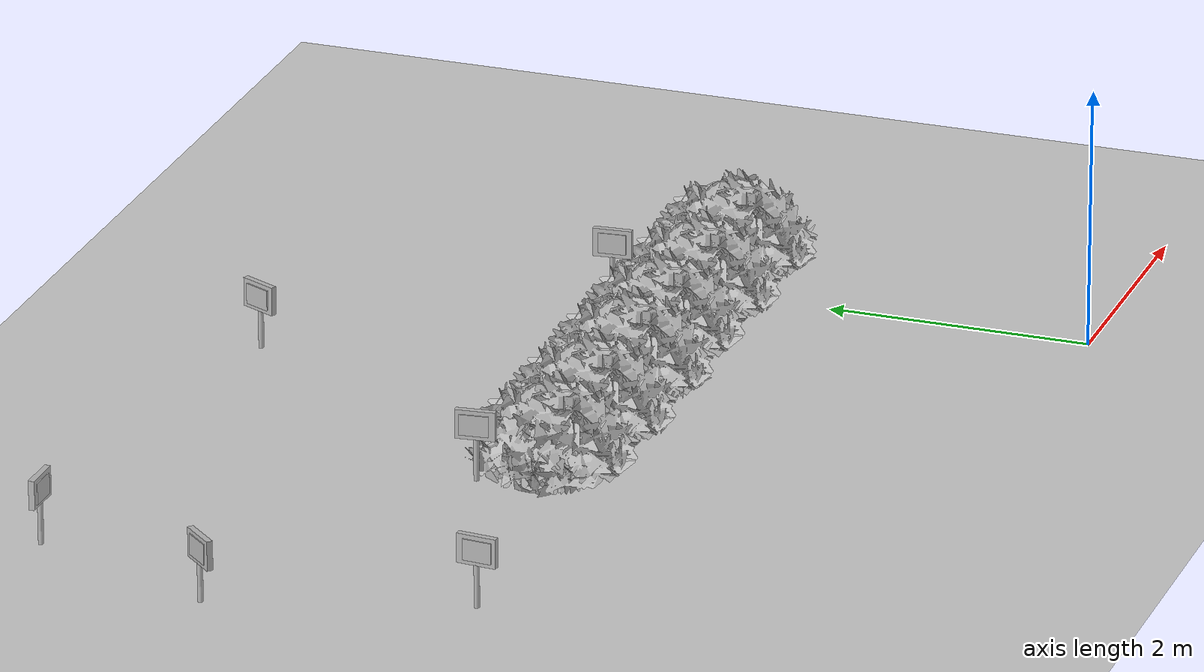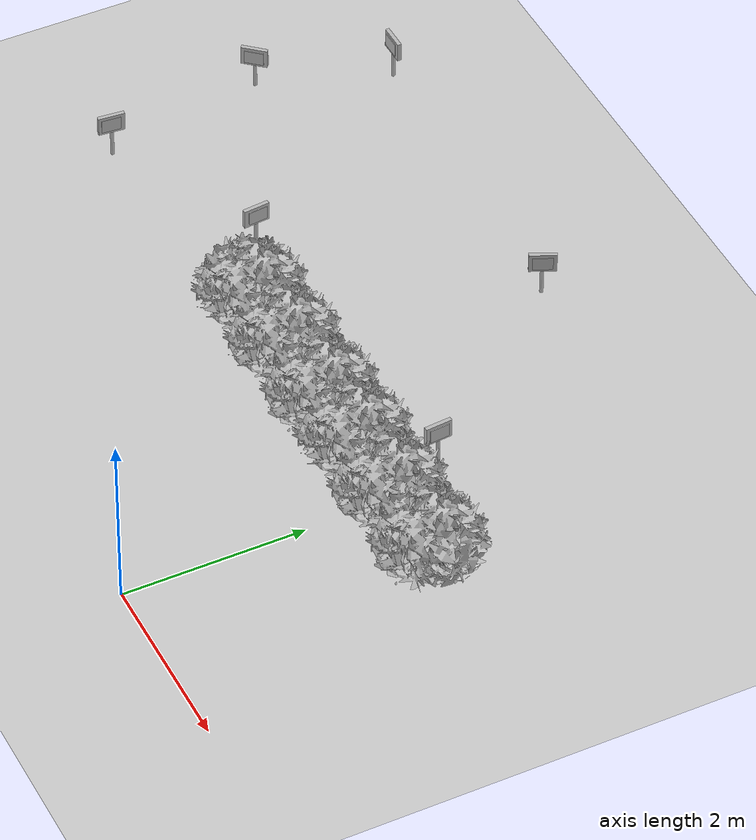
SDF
<sdf version="1.7">
 <world name="default">
  <model name="ground_plane">
   <static>1</static>
   <link name="link">
    <collision name="collision">
     <geometry><plane><normal>0 0 1</normal><size>100 100</size></plane></geometry>
     <surface><friction><ode><mu>100</mu><mu2>50</mu2></ode></friction></surface>
    </collision>
    <visual name="visual">
     <cast_shadows>0</cast_shadows>
     <geometry><plane><normal>0 0 1</normal><size>100 100</size></plane></geometry>
     <material>
      <script><uri>file://media/materials/scripts/gazebo.material</uri><name>Gazebo/Grey</name></script>
     </material>
    </visual>
   </link>
  </model>
  <model name="abbfre_9">
   <link name="link_0">
    <inertial>
     <mass>1</mass>
     <inertia>
      <ixx>0.166667</ixx>
      <ixy>0</ixy>
      <ixz>0</ixz>
      <iyy>0.166667</iyy>
      <iyz>0</iyz>
      <izz>0.166667</izz>
     </inertia>
    </inertial>
    <pose>0 0 -0 1.60917 -0 0</pose>
    <visual name="visual">
     <geometry><mesh><uri>model://abbfre/meshes/arbufres.obj</uri><scale>1 1 1</scale></mesh></geometry>
    </visual>
    <collision name="collision">
     <geometry><mesh><uri>model://abbfre/meshes/arbufres.obj</uri><scale>1 1 1</scale></mesh></geometry>
     <surface>
      <friction>
       <ode><mu>1</mu><mu2>1</mu2><fdir1>0 0 0</fdir1><slip1>0</slip1><slip2>0</slip2></ode>
       <torsional>
        <coefficient>1</coefficient>
        <patch_radius>0</patch_radius>
        <surface_radius>0</surface_radius>
        <use_patch_radius>1</use_patch_radius>
        <ode><slip>0</slip></ode>
       </torsional>
      </friction>
      <bounce><restitution_coefficient>0</restitution_coefficient><threshold>1e+06</threshold></bounce>
      <contact>
       <collide_without_contact>0</collide_without_contact>
       <collide_without_contact_bitmask>1</collide_without_contact_bitmask>
       <collide_bitmask>1</collide_bitmask>
       <ode>
        <soft_cfm>0</soft_cfm>
        <soft_erp>0.2</soft_erp>
        <kp>1e+13</kp>
        <kd>1</kd>
        <max_vel>0.01</max_vel>
        <min_depth>0</min_depth>
       </ode>
       <bullet>
        <split_impulse>1</split_impulse>
        <split_impulse_penetration_threshold>-0.01</split_impulse_penetration_threshold>
        <soft_cfm>0</soft_cfm>
        <soft_erp>0.2</soft_erp>
        <kp>1e+13</kp>
        <kd>1</kd>
       </bullet>
      </contact>
     </surface>
    </collision>
   </link>
   <static>1</static>
   <pose>-0.104269 3.10996 0 0 -0 0</pose>
  </model>
  <model name="abbfre_10">
   <link name="link_0">
    <inertial>
     <mass>1</mass>
     <inertia>
      <ixx>0.166667</ixx>
      <ixy>0</ixy>
      <ixz>0</ixz>
      <iyy>0.166667</iyy>
      <iyz>0</iyz>
      <izz>0.166667</izz>
     </inertia>
    </inertial>
    <pose>0 0 -0 1.60917 -0 0</pose>
    <visual name="visual">
     <geometry><mesh><uri>model://abbfre/meshes/arbufres.obj</uri><scale>1 1 1</scale></mesh></geometry>
    </visual>
    <collision name="collision">
     <geometry><mesh><uri>model://abbfre/meshes/arbufres.obj</uri><scale>1 1 1</scale></mesh></geometry>
     <surface>
      <friction>
       <ode><mu>1</mu><mu2>1</mu2><fdir1>0 0 0</fdir1><slip1>0</slip1><slip2>0</slip2></ode>
       <torsional>
        <coefficient>1</coefficient>
        <patch_radius>0</patch_radius>
        <surface_radius>0</surface_radius>
        <use_patch_radius>1</use_patch_radius>
        <ode><slip>0</slip></ode>
       </torsional>
      </friction>
      <bounce><restitution_coefficient>0</restitution_coefficient><threshold>1e+06</threshold></bounce>
      <contact>
       <collide_without_contact>0</collide_without_contact>
       <collide_without_contact_bitmask>1</collide_without_contact_bitmask>
       <collide_bitmask>1</collide_bitmask>
       <ode>
        <soft_cfm>0</soft_cfm>
        <soft_erp>0.2</soft_erp>
        <kp>1e+13</kp>
        <kd>1</kd>
        <max_vel>0.01</max_vel>
        <min_depth>0</min_depth>
       </ode>
       <bullet>
        <split_impulse>1</split_impulse>
        <split_impulse_penetration_threshold>-0.01</split_impulse_penetration_threshold>
        <soft_cfm>0</soft_cfm>
        <soft_erp>0.2</soft_erp>
        <kp>1e+13</kp>
        <kd>1</kd>
       </bullet>
      </contact>
     </surface>
    </collision>
   </link>
   <static>1</static>
   <pose>-2.49032 3.10051 0 0 -0 0</pose>
  </model>
  <model name="letrero_riego_5">
   <link name="link_0">
    <inertial>
     <mass>0.0543151</mass>
     <inertia>
      <ixx>4.90351e-06</ixx>
      <ixy>0</ixy>
      <ixz>0</ixz>
      <iyy>4.90351e-06</iyy>
      <iyz>0</iyz>
      <izz>1.12837e-07</izz>
     </inertia>
    </inertial>
    <pose>0.002515 0.005109 0.153562 0 -0 0</pose>
    <visual name="visual">
     <geometry><cylinder><radius>0.0203836</radius><length>0.327243</length></cylinder></geometry>
     <material>
      <lighting>1</lighting>
      <script>
       <uri>model://letrero_riego/madera/scripts</uri>
       <uri>model://letrero_riego/madera/textures</uri>
       <name>textur/madera</name>
      </script>
      <shader type="pixel"/>
      <emissive>0 0 0 1</emissive>
     </material>
    </visual>
    <collision name="collision">
     <geometry><cylinder><radius>0.020384</radius><length>0.327243</length></cylinder></geometry>
     <surface>
      <friction>
       <ode><mu>1</mu><mu2>1</mu2><fdir1>0 0 0</fdir1><slip1>0</slip1><slip2>0</slip2></ode>
       <torsional>
        <coefficient>1</coefficient>
        <patch_radius>0</patch_radius>
        <surface_radius>0</surface_radius>
        <use_patch_radius>1</use_patch_radius>
        <ode><slip>0</slip></ode>
       </torsional>
      </friction>
      <bounce><restitution_coefficient>0</restitution_coefficient><threshold>1e+06</threshold></bounce>
      <contact>
       <collide_without_contact>0</collide_without_contact>
       <collide_without_contact_bitmask>1</collide_without_contact_bitmask>
       <collide_bitmask>1</collide_bitmask>
       <ode>
        <soft_cfm>0</soft_cfm>
        <soft_erp>0.2</soft_erp>
        <kp>1e+13</kp>
        <kd>1</kd>
        <max_vel>0.01</max_vel>
        <min_depth>0</min_depth>
       </ode>
       <bullet>
        <split_impulse>1</split_impulse>
        <split_impulse_penetration_threshold>-0.01</split_impulse_penetration_threshold>
        <soft_cfm>0</soft_cfm>
        <soft_erp>0.2</soft_erp>
        <kp>1e+13</kp>
        <kd>1</kd>
       </bullet>
      </contact>
     </surface>
    </collision>
   </link>
   <link name="link_1">
    <inertial>
     <mass>0.00299633</mass>
     <inertia>
      <ixx>1.27855e-05</ixx>
      <ixy>0</ixy>
      <ixz>0</ixz>
      <iyy>3.42923e-05</iyy>
      <iyz>0</iyz>
      <izz>2.25402e-05</izz>
     </inertia>
    </inertial>
    <pose>-0.001542 0.002452 0.422031 0 -0 0</pose>
    <visual name="visual">
     <geometry><box><size>0.296988 0.04549 0.221665</size></box></geometry>
     <material>
      <lighting>1</lighting>
      <script>
       <uri>model://letrero_riego/madera/scripts</uri>
       <uri>model://letrero_riego/madera/textures</uri>
       <name>textur/madera</name>
      </script>
      <shader type="pixel"/>
      <emissive>0 0 0 1</emissive>
     </material>
    </visual>
    <collision name="collision">
     <geometry><box><size>0.296988 0.04549 0.221665</size></box></geometry>
     <surface>
      <friction>
       <ode><mu>1</mu><mu2>1</mu2><fdir1>0 0 0</fdir1><slip1>0</slip1><slip2>0</slip2></ode>
       <torsional>
        <coefficient>1</coefficient>
        <patch_radius>0</patch_radius>
        <surface_radius>0</surface_radius>
        <use_patch_radius>1</use_patch_radius>
        <ode><slip>0</slip></ode>
       </torsional>
      </friction>
      <bounce><restitution_coefficient>0</restitution_coefficient><threshold>1e+06</threshold></bounce>
      <contact>
       <collide_without_contact>0</collide_without_contact>
       <collide_without_contact_bitmask>1</collide_without_contact_bitmask>
       <collide_bitmask>1</collide_bitmask>
       <ode>
        <soft_cfm>0</soft_cfm>
        <soft_erp>0.2</soft_erp>
        <kp>1e+13</kp>
        <kd>1</kd>
        <max_vel>0.01</max_vel>
        <min_depth>0</min_depth>
       </ode>
       <bullet>
        <split_impulse>1</split_impulse>
        <split_impulse_penetration_threshold>-0.01</split_impulse_penetration_threshold>
        <soft_cfm>0</soft_cfm>
        <soft_erp>0.2</soft_erp>
        <kp>1e+13</kp>
        <kd>1</kd>
       </bullet>
      </contact>
     </surface>
    </collision>
   </link>
   <link name="link_2">
    <inertial>
     <mass>0.00173577</mass>
     <inertia>
      <ixx>4.23206e-06</ixx>
      <ixy>0</ixy>
      <ixz>0</ixz>
      <iyy>1.03921e-05</iyy>
      <iyz>0</iyz>
      <izz>7.37287e-06</izz>
     </inertia>
    </inertial>
    <pose>-0.010225 0.002657 0.421501 0 -0 0</pose>
    <visual name="visual">
     <geometry><box><size>0.216284 0.064749 0.15832</size></box></geometry>
     <material>
      <lighting>1</lighting>
      <script>
       <uri>model://letrero_riego/materials/scripts</uri>
       <uri>model://letrero_riego/materials/textures</uri>
       <name>textur/riego</name>
      </script>
      <shader type="pixel"/>
      <emissive>0 0 0 1</emissive>
     </material>
    </visual>
    <collision name="collision">
     <geometry><box><size>0.216284 0.064749 0.15832</size></box></geometry>
     <surface>
      <friction>
       <ode><mu>1</mu><mu2>1</mu2><fdir1>0 0 0</fdir1><slip1>0</slip1><slip2>0</slip2></ode>
       <torsional>
        <coefficient>1</coefficient>
        <patch_radius>0</patch_radius>
        <surface_radius>0</surface_radius>
        <use_patch_radius>1</use_patch_radius>
        <ode><slip>0</slip></ode>
       </torsional>
      </friction>
      <bounce><restitution_coefficient>0</restitution_coefficient><threshold>1e+06</threshold></bounce>
      <contact>
       <collide_without_contact>0</collide_without_contact>
       <collide_without_contact_bitmask>1</collide_without_contact_bitmask>
       <collide_bitmask>1</collide_bitmask>
       <ode>
        <soft_cfm>0</soft_cfm>
        <soft_erp>0.2</soft_erp>
        <kp>1e+13</kp>
        <kd>1</kd>
        <max_vel>0.01</max_vel>
        <min_depth>0</min_depth>
       </ode>
       <bullet>
        <split_impulse>1</split_impulse>
        <split_impulse_penetration_threshold>-0.01</split_impulse_penetration_threshold>
        <soft_cfm>0</soft_cfm>
        <soft_erp>0.2</soft_erp>
        <kp>1e+13</kp>
        <kd>1</kd>
       </bullet>
      </contact>
     </surface>
    </collision>
   </link>
   <joint name="link_0_JOINT_1" type="fixed">
    <parent>link_0</parent>
    <child>link_1</child>
    <physics>
     <ode><limit><cfm>0</cfm><erp>0.2</erp></limit><suspension><cfm>0</cfm><erp>0.2</erp></suspension></ode>
    </physics>
   </joint>
   <joint name="link_0_JOINT_2" type="fixed">
    <parent>link_0</parent>
    <child>link_2</child>
    <physics>
     <ode><limit><cfm>0</cfm><erp>0.2</erp></limit><suspension><cfm>0</cfm><erp>0.2</erp></suspension></ode>
    </physics>
   </joint>
   <static>1</static>
   <pose>-5.80521 5.87905 0 0 -0 0</pose>
  </model>
  <model name="letrero_riego_11">
   <link name="link_0">
    <inertial>
     <mass>0.0543151</mass>
     <inertia>
      <ixx>4.90351e-06</ixx>
      <ixy>0</ixy>
      <ixz>0</ixz>
      <iyy>4.90351e-06</iyy>
      <iyz>0</iyz>
      <izz>1.12837e-07</izz>
     </inertia>
    </inertial>
    <pose>0.002515 0.005109 0.153562 0 -0 0</pose>
    <visual name="visual">
     <geometry><cylinder><radius>0.0203836</radius><length>0.327243</length></cylinder></geometry>
     <material>
      <lighting>1</lighting>
      <script>
       <uri>model://letrero_riego/madera/scripts</uri>
       <uri>model://letrero_riego/madera/textures</uri>
       <name>textur/madera</name>
      </script>
      <shader type="pixel"/>
      <emissive>0 0 0 1</emissive>
     </material>
    </visual>
    <collision name="collision">
     <geometry><cylinder><radius>0.020384</radius><length>0.327243</length></cylinder></geometry>
     <surface>
      <friction>
       <ode><mu>1</mu><mu2>1</mu2><fdir1>0 0 0</fdir1><slip1>0</slip1><slip2>0</slip2></ode>
       <torsional>
        <coefficient>1</coefficient>
        <patch_radius>0</patch_radius>
        <surface_radius>0</surface_radius>
        <use_patch_radius>1</use_patch_radius>
        <ode><slip>0</slip></ode>
       </torsional>
      </friction>
      <bounce><restitution_coefficient>0</restitution_coefficient><threshold>1e+06</threshold></bounce>
      <contact>
       <collide_without_contact>0</collide_without_contact>
       <collide_without_contact_bitmask>1</collide_without_contact_bitmask>
       <collide_bitmask>1</collide_bitmask>
       <ode>
        <soft_cfm>0</soft_cfm>
        <soft_erp>0.2</soft_erp>
        <kp>1e+13</kp>
        <kd>1</kd>
        <max_vel>0.01</max_vel>
        <min_depth>0</min_depth>
       </ode>
       <bullet>
        <split_impulse>1</split_impulse>
        <split_impulse_penetration_threshold>-0.01</split_impulse_penetration_threshold>
        <soft_cfm>0</soft_cfm>
        <soft_erp>0.2</soft_erp>
        <kp>1e+13</kp>
        <kd>1</kd>
       </bullet>
      </contact>
     </surface>
    </collision>
   </link>
   <link name="link_1">
    <inertial>
     <mass>0.00299633</mass>
     <inertia>
      <ixx>1.27855e-05</ixx>
      <ixy>0</ixy>
      <ixz>0</ixz>
      <iyy>3.42923e-05</iyy>
      <iyz>0</iyz>
      <izz>2.25402e-05</izz>
     </inertia>
    </inertial>
    <pose>-0.001542 0.002452 0.422031 0 -0 0</pose>
    <visual name="visual">
     <geometry><box><size>0.296988 0.04549 0.221665</size></box></geometry>
     <material>
      <lighting>1</lighting>
      <script>
       <uri>model://letrero_riego/madera/scripts</uri>
       <uri>model://letrero_riego/madera/textures</uri>
       <name>textur/madera</name>
      </script>
      <shader type="pixel"/>
      <emissive>0 0 0 1</emissive>
     </material>
    </visual>
    <collision name="collision">
     <geometry><box><size>0.296988 0.04549 0.221665</size></box></geometry>
     <surface>
      <friction>
       <ode><mu>1</mu><mu2>1</mu2><fdir1>0 0 0</fdir1><slip1>0</slip1><slip2>0</slip2></ode>
       <torsional>
        <coefficient>1</coefficient>
        <patch_radius>0</patch_radius>
        <surface_radius>0</surface_radius>
        <use_patch_radius>1</use_patch_radius>
        <ode><slip>0</slip></ode>
       </torsional>
      </friction>
      <bounce><restitution_coefficient>0</restitution_coefficient><threshold>1e+06</threshold></bounce>
      <contact>
       <collide_without_contact>0</collide_without_contact>
       <collide_without_contact_bitmask>1</collide_without_contact_bitmask>
       <collide_bitmask>1</collide_bitmask>
       <ode>
        <soft_cfm>0</soft_cfm>
        <soft_erp>0.2</soft_erp>
        <kp>1e+13</kp>
        <kd>1</kd>
        <max_vel>0.01</max_vel>
        <min_depth>0</min_depth>
       </ode>
       <bullet>
        <split_impulse>1</split_impulse>
        <split_impulse_penetration_threshold>-0.01</split_impulse_penetration_threshold>
        <soft_cfm>0</soft_cfm>
        <soft_erp>0.2</soft_erp>
        <kp>1e+13</kp>
        <kd>1</kd>
       </bullet>
      </contact>
     </surface>
    </collision>
   </link>
   <link name="link_2">
    <inertial>
     <mass>0.00173577</mass>
     <inertia>
      <ixx>4.23206e-06</ixx>
      <ixy>0</ixy>
      <ixz>0</ixz>
      <iyy>1.03921e-05</iyy>
      <iyz>0</iyz>
      <izz>7.37287e-06</izz>
     </inertia>
    </inertial>
    <pose>-0.010225 0.002657 0.421501 0 -0 0</pose>
    <visual name="visual">
     <geometry><box><size>0.216284 0.064749 0.15832</size></box></geometry>
     <material>
      <lighting>1</lighting>
      <script>
       <uri>model://letrero_riego/materials/scripts</uri>
       <uri>model://letrero_riego/materials/textures</uri>
       <name>textur/riego</name>
      </script>
      <shader type="pixel"/>
      <emissive>0 0 0 1</emissive>
     </material>
    </visual>
    <collision name="collision">
     <geometry><box><size>0.216284 0.064749 0.15832</size></box></geometry>
     <surface>
      <friction>
       <ode><mu>1</mu><mu2>1</mu2><fdir1>0 0 0</fdir1><slip1>0</slip1><slip2>0</slip2></ode>
       <torsional>
        <coefficient>1</coefficient>
        <patch_radius>0</patch_radius>
        <surface_radius>0</surface_radius>
        <use_patch_radius>1</use_patch_radius>
        <ode><slip>0</slip></ode>
       </torsional>
      </friction>
      <bounce><restitution_coefficient>0</restitution_coefficient><threshold>1e+06</threshold></bounce>
      <contact>
       <collide_without_contact>0</collide_without_contact>
       <collide_without_contact_bitmask>1</collide_without_contact_bitmask>
       <collide_bitmask>1</collide_bitmask>
       <ode>
        <soft_cfm>0</soft_cfm>
        <soft_erp>0.2</soft_erp>
        <kp>1e+13</kp>
        <kd>1</kd>
        <max_vel>0.01</max_vel>
        <min_depth>0</min_depth>
       </ode>
       <bullet>
        <split_impulse>1</split_impulse>
        <split_impulse_penetration_threshold>-0.01</split_impulse_penetration_threshold>
        <soft_cfm>0</soft_cfm>
        <soft_erp>0.2</soft_erp>
        <kp>1e+13</kp>
        <kd>1</kd>
       </bullet>
      </contact>
     </surface>
    </collision>
   </link>
   <joint name="link_0_JOINT_1" type="fixed">
    <parent>link_0</parent>
    <child>link_1</child>
    <physics>
     <ode><limit><cfm>0</cfm><erp>0.2</erp></limit><suspension><cfm>0</cfm><erp>0.2</erp></suspension></ode>
    </physics>
   </joint>
   <joint name="link_0_JOINT_2" type="fixed">
    <parent>link_0</parent>
    <child>link_2</child>
    <physics>
     <ode><limit><cfm>0</cfm><erp>0.2</erp></limit><suspension><cfm>0</cfm><erp>0.2</erp></suspension></ode>
    </physics>
   </joint>
   <static>1</static>
   <pose>-5.90008 2.58785 0.067402 0 -0 1.48305</pose>
  </model>
  <model name="letrero_fresa_9">
   <link name="link_0">
    <inertial>
     <mass>0.00543151</mass>
     <inertia>
      <ixx>4.90351e-06</ixx>
      <ixy>0</ixy>
      <ixz>0</ixz>
      <iyy>4.90351e-06</iyy>
      <iyz>0</iyz>
      <izz>1.12837e-07</izz>
     </inertia>
    </inertial>
    <pose>0.002372 -0.000902 -0.178803 0 -0 0</pose>
    <visual name="visual">
     <geometry><cylinder><radius>0.0203836</radius><length>0.327243</length></cylinder></geometry>
     <material>
      <lighting>1</lighting>
      <script>
       <uri>model://letrero_fresa/madera/scripts</uri>
       <uri>model://letrero_fresa/madera/textures</uri>
       <name>textur/madera</name>
      </script>
      <shader type="pixel"/>
      <emissive>0 0 0 1</emissive>
     </material>
    </visual>
    <collision name="collision">
     <geometry><cylinder><radius>0.020384</radius><length>0.327243</length></cylinder></geometry>
     <surface>
      <friction>
       <ode><mu>1</mu><mu2>1</mu2><fdir1>0 0 0</fdir1><slip1>0</slip1><slip2>0</slip2></ode>
       <torsional>
        <coefficient>1</coefficient>
        <patch_radius>0</patch_radius>
        <surface_radius>0</surface_radius>
        <use_patch_radius>1</use_patch_radius>
        <ode><slip>0</slip></ode>
       </torsional>
      </friction>
      <bounce><restitution_coefficient>0</restitution_coefficient><threshold>1e+06</threshold></bounce>
      <contact>
       <collide_without_contact>0</collide_without_contact>
       <collide_without_contact_bitmask>1</collide_without_contact_bitmask>
       <collide_bitmask>1</collide_bitmask>
       <ode>
        <soft_cfm>0</soft_cfm>
        <soft_erp>0.2</soft_erp>
        <kp>1e+13</kp>
        <kd>1</kd>
        <max_vel>0.01</max_vel>
        <min_depth>0</min_depth>
       </ode>
       <bullet>
        <split_impulse>1</split_impulse>
        <split_impulse_penetration_threshold>-0.01</split_impulse_penetration_threshold>
        <soft_cfm>0</soft_cfm>
        <soft_erp>0.2</soft_erp>
        <kp>1e+13</kp>
        <kd>1</kd>
       </bullet>
      </contact>
     </surface>
    </collision>
   </link>
   <link name="link_1">
    <inertial>
     <mass>0.00299633</mass>
     <inertia>
      <ixx>1.27855e-05</ixx>
      <ixy>0</ixy>
      <ixz>0</ixz>
      <iyy>3.42923e-05</iyy>
      <iyz>0</iyz>
      <izz>2.25402e-05</izz>
     </inertia>
    </inertial>
    <pose>-0.001685 -0.003559 0.089666 0 -0 0</pose>
    <visual name="visual">
     <geometry><box><size>0.296988 0.04549 0.221665</size></box></geometry>
     <material>
      <lighting>1</lighting>
      <script>
       <uri>model://letrero_fresa/madera/scripts</uri>
       <uri>model://letrero_fresa/madera/textures</uri>
       <name>textur/madera</name>
      </script>
      <shader type="pixel"/>
      <emissive>0 0 0 1</emissive>
     </material>
    </visual>
    <collision name="collision">
     <geometry><box><size>0.296988 0.04549 0.221665</size></box></geometry>
     <surface>
      <friction>
       <ode><mu>1</mu><mu2>1</mu2><fdir1>0 0 0</fdir1><slip1>0</slip1><slip2>0</slip2></ode>
       <torsional>
        <coefficient>1</coefficient>
        <patch_radius>0</patch_radius>
        <surface_radius>0</surface_radius>
        <use_patch_radius>1</use_patch_radius>
        <ode><slip>0</slip></ode>
       </torsional>
      </friction>
      <bounce><restitution_coefficient>0</restitution_coefficient><threshold>1e+06</threshold></bounce>
      <contact>
       <collide_without_contact>0</collide_without_contact>
       <collide_without_contact_bitmask>1</collide_without_contact_bitmask>
       <collide_bitmask>1</collide_bitmask>
       <ode>
        <soft_cfm>0</soft_cfm>
        <soft_erp>0.2</soft_erp>
        <kp>1e+13</kp>
        <kd>1</kd>
        <max_vel>0.01</max_vel>
        <min_depth>0</min_depth>
       </ode>
       <bullet>
        <split_impulse>1</split_impulse>
        <split_impulse_penetration_threshold>-0.01</split_impulse_penetration_threshold>
        <soft_cfm>0</soft_cfm>
        <soft_erp>0.2</soft_erp>
        <kp>1e+13</kp>
        <kd>1</kd>
       </bullet>
      </contact>
     </surface>
    </collision>
   </link>
   <link name="link_2">
    <inertial>
     <mass>0.00219695</mass>
     <inertia>
      <ixx>5.34209e-06</ixx>
      <ixy>0</ixy>
      <ixz>0</ixz>
      <iyy>1.31531e-05</iyy>
      <iyz>0</iyz>
      <izz>9.31738e-06</izz>
     </inertia>
    </inertial>
    <pose>-0.001275 -0.005928 0.089136 0 -0 0</pose>
    <visual name="visual">
     <geometry><box><size>0.216284 0.06414 0.15832</size></box></geometry>
     <material>
      <lighting>1</lighting>
      <script>
       <uri>model://letrero_fresa/materials/scripts</uri>
       <uri>model://letrero_fresa/materials/textures</uri>
       <name>textur/difre</name>
      </script>
      <shader type="pixel"/>
      <emissive>0 0 0 1</emissive>
     </material>
    </visual>
    <collision name="collision">
     <geometry><box><size>0.216284 0.06414 0.15832</size></box></geometry>
     <surface>
      <friction>
       <ode><mu>1</mu><mu2>1</mu2><fdir1>0 0 0</fdir1><slip1>0</slip1><slip2>0</slip2></ode>
       <torsional>
        <coefficient>1</coefficient>
        <patch_radius>0</patch_radius>
        <surface_radius>0</surface_radius>
        <use_patch_radius>1</use_patch_radius>
        <ode><slip>0</slip></ode>
       </torsional>
      </friction>
      <bounce><restitution_coefficient>0</restitution_coefficient><threshold>1e+06</threshold></bounce>
      <contact>
       <collide_without_contact>0</collide_without_contact>
       <collide_without_contact_bitmask>1</collide_without_contact_bitmask>
       <collide_bitmask>1</collide_bitmask>
       <ode>
        <soft_cfm>0</soft_cfm>
        <soft_erp>0.2</soft_erp>
        <kp>1e+13</kp>
        <kd>1</kd>
        <max_vel>0.01</max_vel>
        <min_depth>0</min_depth>
       </ode>
       <bullet>
        <split_impulse>1</split_impulse>
        <split_impulse_penetration_threshold>-0.01</split_impulse_penetration_threshold>
        <soft_cfm>0</soft_cfm>
        <soft_erp>0.2</soft_erp>
        <kp>1e+13</kp>
        <kd>1</kd>
       </bullet>
      </contact>
     </surface>
    </collision>
   </link>
   <joint name="link_0_JOINT_1" type="fixed">
    <parent>link_0</parent>
    <child>link_1</child>
    <physics>
     <ode><limit><cfm>0</cfm><erp>0.2</erp></limit><suspension><cfm>0</cfm><erp>0.2</erp></suspension></ode>
    </physics>
   </joint>
   <joint name="link_0_JOINT_2" type="fixed">
    <parent>link_0</parent>
    <child>link_2</child>
    <physics>
     <ode><limit><cfm>0</cfm><erp>0.2</erp></limit><suspension><cfm>0</cfm><erp>0.2</erp></suspension></ode>
    </physics>
   </joint>
   <static>1</static>
   <pose>-0.286531 3.6091 0.333746 0 -0 1.65169</pose>
  </model>
  <model name="letrero_riego_12">
   <link name="link_0">
    <inertial>
     <mass>0.0543151</mass>
     <inertia>
      <ixx>4.90351e-06</ixx>
      <ixy>0</ixy>
      <ixz>0</ixz>
      <iyy>4.90351e-06</iyy>
      <iyz>0</iyz>
      <izz>1.12837e-07</izz>
     </inertia>
    </inertial>
    <pose>0.002515 0.005109 0.153562 0 -0 0</pose>
    <visual name="visual">
     <geometry><cylinder><radius>0.0203836</radius><length>0.327243</length></cylinder></geometry>
     <material>
      <lighting>1</lighting>
      <script>
       <uri>model://letrero_riego/madera/scripts</uri>
       <uri>model://letrero_riego/madera/textures</uri>
       <name>textur/madera</name>
      </script>
      <shader type="pixel"/>
      <emissive>0 0 0 1</emissive>
     </material>
    </visual>
    <collision name="collision">
     <geometry><cylinder><radius>0.020384</radius><length>0.327243</length></cylinder></geometry>
     <surface>
      <friction>
       <ode><mu>1</mu><mu2>1</mu2><fdir1>0 0 0</fdir1><slip1>0</slip1><slip2>0</slip2></ode>
       <torsional>
        <coefficient>1</coefficient>
        <patch_radius>0</patch_radius>
        <surface_radius>0</surface_radius>
        <use_patch_radius>1</use_patch_radius>
        <ode><slip>0</slip></ode>
       </torsional>
      </friction>
      <bounce><restitution_coefficient>0</restitution_coefficient><threshold>1e+06</threshold></bounce>
      <contact>
       <collide_without_contact>0</collide_without_contact>
       <collide_without_contact_bitmask>1</collide_without_contact_bitmask>
       <collide_bitmask>1</collide_bitmask>
       <ode>
        <soft_cfm>0</soft_cfm>
        <soft_erp>0.2</soft_erp>
        <kp>1e+13</kp>
        <kd>1</kd>
        <max_vel>0.01</max_vel>
        <min_depth>0</min_depth>
       </ode>
       <bullet>
        <split_impulse>1</split_impulse>
        <split_impulse_penetration_threshold>-0.01</split_impulse_penetration_threshold>
        <soft_cfm>0</soft_cfm>
        <soft_erp>0.2</soft_erp>
        <kp>1e+13</kp>
        <kd>1</kd>
       </bullet>
      </contact>
     </surface>
    </collision>
   </link>
   <link name="link_1">
    <inertial>
     <mass>0.00299633</mass>
     <inertia>
      <ixx>1.27855e-05</ixx>
      <ixy>0</ixy>
      <ixz>0</ixz>
      <iyy>3.42923e-05</iyy>
      <iyz>0</iyz>
      <izz>2.25402e-05</izz>
     </inertia>
    </inertial>
    <pose>-0.001542 0.002452 0.422031 0 -0 0</pose>
    <visual name="visual">
     <geometry><box><size>0.296988 0.04549 0.221665</size></box></geometry>
     <material>
      <lighting>1</lighting>
      <script>
       <uri>model://letrero_riego/madera/scripts</uri>
       <uri>model://letrero_riego/madera/textures</uri>
       <name>textur/madera</name>
      </script>
      <shader type="pixel"/>
      <emissive>0 0 0 1</emissive>
     </material>
    </visual>
    <collision name="collision">
     <geometry><box><size>0.296988 0.04549 0.221665</size></box></geometry>
     <surface>
      <friction>
       <ode><mu>1</mu><mu2>1</mu2><fdir1>0 0 0</fdir1><slip1>0</slip1><slip2>0</slip2></ode>
       <torsional>
        <coefficient>1</coefficient>
        <patch_radius>0</patch_radius>
        <surface_radius>0</surface_radius>
        <use_patch_radius>1</use_patch_radius>
        <ode><slip>0</slip></ode>
       </torsional>
      </friction>
      <bounce><restitution_coefficient>0</restitution_coefficient><threshold>1e+06</threshold></bounce>
      <contact>
       <collide_without_contact>0</collide_without_contact>
       <collide_without_contact_bitmask>1</collide_without_contact_bitmask>
       <collide_bitmask>1</collide_bitmask>
       <ode>
        <soft_cfm>0</soft_cfm>
        <soft_erp>0.2</soft_erp>
        <kp>1e+13</kp>
        <kd>1</kd>
        <max_vel>0.01</max_vel>
        <min_depth>0</min_depth>
       </ode>
       <bullet>
        <split_impulse>1</split_impulse>
        <split_impulse_penetration_threshold>-0.01</split_impulse_penetration_threshold>
        <soft_cfm>0</soft_cfm>
        <soft_erp>0.2</soft_erp>
        <kp>1e+13</kp>
        <kd>1</kd>
       </bullet>
      </contact>
     </surface>
    </collision>
   </link>
   <link name="link_2">
    <inertial>
     <mass>0.00173577</mass>
     <inertia>
      <ixx>4.23206e-06</ixx>
      <ixy>0</ixy>
      <ixz>0</ixz>
      <iyy>1.03921e-05</iyy>
      <iyz>0</iyz>
      <izz>7.37287e-06</izz>
     </inertia>
    </inertial>
    <pose>-0.010225 0.002657 0.421501 0 -0 0</pose>
    <visual name="visual">
     <geometry><box><size>0.216284 0.064749 0.15832</size></box></geometry>
     <material>
      <lighting>1</lighting>
      <script>
       <uri>model://letrero_riego/materials/scripts</uri>
       <uri>model://letrero_riego/materials/textures</uri>
       <name>textur/riego</name>
      </script>
      <shader type="pixel"/>
      <emissive>0 0 0 1</emissive>
     </material>
    </visual>
    <collision name="collision">
     <geometry><box><size>0.216284 0.064749 0.15832</size></box></geometry>
     <surface>
      <friction>
       <ode><mu>1</mu><mu2>1</mu2><fdir1>0 0 0</fdir1><slip1>0</slip1><slip2>0</slip2></ode>
       <torsional>
        <coefficient>1</coefficient>
        <patch_radius>0</patch_radius>
        <surface_radius>0</surface_radius>
        <use_patch_radius>1</use_patch_radius>
        <ode><slip>0</slip></ode>
       </torsional>
      </friction>
      <bounce><restitution_coefficient>0</restitution_coefficient><threshold>1e+06</threshold></bounce>
      <contact>
       <collide_without_contact>0</collide_without_contact>
       <collide_without_contact_bitmask>1</collide_without_contact_bitmask>
       <collide_bitmask>1</collide_bitmask>
       <ode>
        <soft_cfm>0</soft_cfm>
        <soft_erp>0.2</soft_erp>
        <kp>1e+13</kp>
        <kd>1</kd>
        <max_vel>0.01</max_vel>
        <min_depth>0</min_depth>
       </ode>
       <bullet>
        <split_impulse>1</split_impulse>
        <split_impulse_penetration_threshold>-0.01</split_impulse_penetration_threshold>
        <soft_cfm>0</soft_cfm>
        <soft_erp>0.2</soft_erp>
        <kp>1e+13</kp>
        <kd>1</kd>
       </bullet>
      </contact>
     </surface>
    </collision>
   </link>
   <joint name="link_0_JOINT_1" type="fixed">
    <parent>link_0</parent>
    <child>link_1</child>
    <physics>
     <ode><limit><cfm>0</cfm><erp>0.2</erp></limit><suspension><cfm>0</cfm><erp>0.2</erp></suspension></ode>
    </physics>
   </joint>
   <joint name="link_0_JOINT_2" type="fixed">
    <parent>link_0</parent>
    <child>link_2</child>
    <physics>
     <ode><limit><cfm>0</cfm><erp>0.2</erp></limit><suspension><cfm>0</cfm><erp>0.2</erp></suspension></ode>
    </physics>
   </joint>
   <static>1</static>
   <pose>-3.9223 3.33584 0.074755 0 0 -1.46895</pose>
  </model>
  <model name="letrero_insecto_6">
   <link name="link_0">
    <inertial>
     <mass>0.00543151</mass>
     <inertia>
      <ixx>4.90351e-06</ixx>
      <ixy>0</ixy>
      <ixz>0</ixz>
      <iyy>4.90351e-06</iyy>
      <iyz>0</iyz>
      <izz>1.12837e-07</izz>
     </inertia>
    </inertial>
    <pose>0.002372 -0.000902 -0.178803 0 -0 0</pose>
    <visual name="visual">
     <geometry><cylinder><radius>0.0203836</radius><length>0.327243</length></cylinder></geometry>
     <material>
      <lighting>1</lighting>
      <script>
       <uri>model://letrero_insecto/madera/scripts</uri>
       <uri>model://letrero_insecto/madera/textures</uri>
       <name>textur/madera</name>
      </script>
      <shader type="pixel"/>
      <emissive>0 0 0 1</emissive>
     </material>
    </visual>
    <collision name="collision">
     <geometry><cylinder><radius>0.020384</radius><length>0.327243</length></cylinder></geometry>
     <surface>
      <friction>
       <ode><mu>1</mu><mu2>1</mu2><fdir1>0 0 0</fdir1><slip1>0</slip1><slip2>0</slip2></ode>
       <torsional>
        <coefficient>1</coefficient>
        <patch_radius>0</patch_radius>
        <surface_radius>0</surface_radius>
        <use_patch_radius>1</use_patch_radius>
        <ode><slip>0</slip></ode>
       </torsional>
      </friction>
      <bounce><restitution_coefficient>0</restitution_coefficient><threshold>1e+06</threshold></bounce>
      <contact>
       <collide_without_contact>0</collide_without_contact>
       <collide_without_contact_bitmask>1</collide_without_contact_bitmask>
       <collide_bitmask>1</collide_bitmask>
       <ode>
        <soft_cfm>0</soft_cfm>
        <soft_erp>0.2</soft_erp>
        <kp>1e+13</kp>
        <kd>1</kd>
        <max_vel>0.01</max_vel>
        <min_depth>0</min_depth>
       </ode>
       <bullet>
        <split_impulse>1</split_impulse>
        <split_impulse_penetration_threshold>-0.01</split_impulse_penetration_threshold>
        <soft_cfm>0</soft_cfm>
        <soft_erp>0.2</soft_erp>
        <kp>1e+13</kp>
        <kd>1</kd>
       </bullet>
      </contact>
     </surface>
    </collision>
   </link>
   <link name="link_1">
    <inertial>
     <mass>0.00299633</mass>
     <inertia>
      <ixx>1.27855e-05</ixx>
      <ixy>0</ixy>
      <ixz>0</ixz>
      <iyy>3.42923e-05</iyy>
      <iyz>0</iyz>
      <izz>2.25402e-05</izz>
     </inertia>
    </inertial>
    <pose>-0.001685 -0.003559 0.089666 0 -0 0</pose>
    <visual name="visual">
     <geometry><box><size>0.296988 0.04549 0.221665</size></box></geometry>
     <material>
      <lighting>1</lighting>
      <script>
       <uri>model://letrero_insecto/madera/scripts</uri>
       <uri>model://letrero_insecto/madera/textures</uri>
       <name>textur/madera</name>
      </script>
      <shader type="pixel"/>
      <emissive>0 0 0 1</emissive>
     </material>
    </visual>
    <collision name="collision">
     <geometry><box><size>0.296988 0.04549 0.221665</size></box></geometry>
     <surface>
      <friction>
       <ode><mu>1</mu><mu2>1</mu2><fdir1>0 0 0</fdir1><slip1>0</slip1><slip2>0</slip2></ode>
       <torsional>
        <coefficient>1</coefficient>
        <patch_radius>0</patch_radius>
        <surface_radius>0</surface_radius>
        <use_patch_radius>1</use_patch_radius>
        <ode><slip>0</slip></ode>
       </torsional>
      </friction>
      <bounce><restitution_coefficient>0</restitution_coefficient><threshold>1e+06</threshold></bounce>
      <contact>
       <collide_without_contact>0</collide_without_contact>
       <collide_without_contact_bitmask>1</collide_without_contact_bitmask>
       <collide_bitmask>1</collide_bitmask>
       <ode>
        <soft_cfm>0</soft_cfm>
        <soft_erp>0.2</soft_erp>
        <kp>1e+13</kp>
        <kd>1</kd>
        <max_vel>0.01</max_vel>
        <min_depth>0</min_depth>
       </ode>
       <bullet>
        <split_impulse>1</split_impulse>
        <split_impulse_penetration_threshold>-0.01</split_impulse_penetration_threshold>
        <soft_cfm>0</soft_cfm>
        <soft_erp>0.2</soft_erp>
        <kp>1e+13</kp>
        <kd>1</kd>
       </bullet>
      </contact>
     </surface>
    </collision>
   </link>
   <link name="link_2">
    <inertial>
     <mass>0.00219695</mass>
     <inertia>
      <ixx>5.34209e-06</ixx>
      <ixy>0</ixy>
      <ixz>0</ixz>
      <iyy>1.31531e-05</iyy>
      <iyz>0</iyz>
      <izz>9.31738e-06</izz>
     </inertia>
    </inertial>
    <pose>-0.001275 -0.005928 0.089136 0 -0 0</pose>
    <visual name="visual">
     <geometry><box><size>0.216284 0.06414 0.15832</size></box></geometry>
     <material>
      <lighting>1</lighting>
      <script>
       <uri>model://letrero_insecto/materials/scripts</uri>
       <uri>model://letrero_insecto/materials/textures</uri>
       <name>textur/insec</name>
      </script>
      <shader type="pixel"/>
      <emissive>0 0 0 1</emissive>
     </material>
    </visual>
    <collision name="collision">
     <geometry><box><size>0.216284 0.06414 0.15832</size></box></geometry>
     <surface>
      <friction>
       <ode><mu>1</mu><mu2>1</mu2><fdir1>0 0 0</fdir1><slip1>0</slip1><slip2>0</slip2></ode>
       <torsional>
        <coefficient>1</coefficient>
        <patch_radius>0</patch_radius>
        <surface_radius>0</surface_radius>
        <use_patch_radius>1</use_patch_radius>
        <ode><slip>0</slip></ode>
       </torsional>
      </friction>
      <bounce><restitution_coefficient>0</restitution_coefficient><threshold>1e+06</threshold></bounce>
      <contact>
       <collide_without_contact>0</collide_without_contact>
       <collide_without_contact_bitmask>1</collide_without_contact_bitmask>
       <collide_bitmask>1</collide_bitmask>
       <ode>
        <soft_cfm>0</soft_cfm>
        <soft_erp>0.2</soft_erp>
        <kp>1e+13</kp>
        <kd>1</kd>
        <max_vel>0.01</max_vel>
        <min_depth>0</min_depth>
       </ode>
       <bullet>
        <split_impulse>1</split_impulse>
        <split_impulse_penetration_threshold>-0.01</split_impulse_penetration_threshold>
        <soft_cfm>0</soft_cfm>
        <soft_erp>0.2</soft_erp>
        <kp>1e+13</kp>
        <kd>1</kd>
       </bullet>
      </contact>
     </surface>
    </collision>
   </link>
   <joint name="link_0_JOINT_1" type="fixed">
    <parent>link_0</parent>
    <child>link_1</child>
    <physics>
     <ode><limit><cfm>0</cfm><erp>0.2</erp></limit><suspension><cfm>0</cfm><erp>0.2</erp></suspension></ode>
    </physics>
   </joint>
   <joint name="link_0_JOINT_2" type="fixed">
    <parent>link_0</parent>
    <child>link_2</child>
    <physics>
     <ode><limit><cfm>0</cfm><erp>0.2</erp></limit><suspension><cfm>0</cfm><erp>0.2</erp></suspension></ode>
    </physics>
   </joint>
   <static>1</static>
   <pose>-2.04939 5.71819 0.310742 0 0 -2.00739</pose>
  </model>
  <model name="letrero_cheems_0">
   <link name="link_0">
    <inertial>
     <mass>0.00543151</mass>
     <inertia>
      <ixx>4.90351e-06</ixx>
      <ixy>0</ixy>
      <ixz>0</ixz>
      <iyy>4.90351e-06</iyy>
      <iyz>0</iyz>
      <izz>1.12837e-07</izz>
     </inertia>
    </inertial>
    <pose>0.002372 -0.000902 -0.178803 0 -0 0</pose>
    <visual name="visual">
     <geometry><cylinder><radius>0.0203836</radius><length>0.327243</length></cylinder></geometry>
     <material>
      <lighting>1</lighting>
      <script>
       <uri>model://letrero_cheems/madera/scripts</uri>
       <uri>model://letrero_cheems/madera/textures</uri>
       <name>textur/madera</name>
      </script>
      <shader type="pixel"/>
      <emissive>0 0 0 1</emissive>
     </material>
    </visual>
    <collision name="collision">
     <geometry><cylinder><radius>0.020384</radius><length>0.327243</length></cylinder></geometry>
     <surface>
      <friction>
       <ode><mu>1</mu><mu2>1</mu2><fdir1>0 0 0</fdir1><slip1>0</slip1><slip2>0</slip2></ode>
       <torsional>
        <coefficient>1</coefficient>
        <patch_radius>0</patch_radius>
        <surface_radius>0</surface_radius>
        <use_patch_radius>1</use_patch_radius>
        <ode><slip>0</slip></ode>
       </torsional>
      </friction>
      <bounce><restitution_coefficient>0</restitution_coefficient><threshold>1e+06</threshold></bounce>
      <contact>
       <collide_without_contact>0</collide_without_contact>
       <collide_without_contact_bitmask>1</collide_without_contact_bitmask>
       <collide_bitmask>1</collide_bitmask>
       <ode>
        <soft_cfm>0</soft_cfm>
        <soft_erp>0.2</soft_erp>
        <kp>1e+13</kp>
        <kd>1</kd>
        <max_vel>0.01</max_vel>
        <min_depth>0</min_depth>
       </ode>
       <bullet>
        <split_impulse>1</split_impulse>
        <split_impulse_penetration_threshold>-0.01</split_impulse_penetration_threshold>
        <soft_cfm>0</soft_cfm>
        <soft_erp>0.2</soft_erp>
        <kp>1e+13</kp>
        <kd>1</kd>
       </bullet>
      </contact>
     </surface>
    </collision>
   </link>
   <link name="link_1">
    <inertial>
     <mass>0.00299633</mass>
     <inertia>
      <ixx>1.27855e-05</ixx>
      <ixy>0</ixy>
      <ixz>0</ixz>
      <iyy>3.42923e-05</iyy>
      <iyz>0</iyz>
      <izz>2.25402e-05</izz>
     </inertia>
    </inertial>
    <pose>-0.001685 -0.003559 0.089666 0 -0 0</pose>
    <visual name="visual">
     <geometry><box><size>0.296988 0.04549 0.221665</size></box></geometry>
     <material>
      <lighting>1</lighting>
      <script>
       <uri>model://letrero_cheems/madera/scripts</uri>
       <uri>model://letrero_cheems/madera/textures</uri>
       <name>textur/madera</name>
      </script>
      <shader type="pixel"/>
      <emissive>0 0 0 1</emissive>
     </material>
    </visual>
    <collision name="collision">
     <geometry><box><size>0.296988 0.04549 0.221665</size></box></geometry>
     <surface>
      <friction>
       <ode><mu>1</mu><mu2>1</mu2><fdir1>0 0 0</fdir1><slip1>0</slip1><slip2>0</slip2></ode>
       <torsional>
        <coefficient>1</coefficient>
        <patch_radius>0</patch_radius>
        <surface_radius>0</surface_radius>
        <use_patch_radius>1</use_patch_radius>
        <ode><slip>0</slip></ode>
       </torsional>
      </friction>
      <bounce><restitution_coefficient>0</restitution_coefficient><threshold>1e+06</threshold></bounce>
      <contact>
       <collide_without_contact>0</collide_without_contact>
       <collide_without_contact_bitmask>1</collide_without_contact_bitmask>
       <collide_bitmask>1</collide_bitmask>
       <ode>
        <soft_cfm>0</soft_cfm>
        <soft_erp>0.2</soft_erp>
        <kp>1e+13</kp>
        <kd>1</kd>
        <max_vel>0.01</max_vel>
        <min_depth>0</min_depth>
       </ode>
       <bullet>
        <split_impulse>1</split_impulse>
        <split_impulse_penetration_threshold>-0.01</split_impulse_penetration_threshold>
        <soft_cfm>0</soft_cfm>
        <soft_erp>0.2</soft_erp>
        <kp>1e+13</kp>
        <kd>1</kd>
       </bullet>
      </contact>
     </surface>
    </collision>
   </link>
   <link name="link_2">
    <inertial>
     <mass>0.00219695</mass>
     <inertia>
      <ixx>5.34209e-06</ixx>
      <ixy>0</ixy>
      <ixz>0</ixz>
      <iyy>1.31531e-05</iyy>
      <iyz>0</iyz>
      <izz>9.31738e-06</izz>
     </inertia>
    </inertial>
    <pose>-0.001275 -0.005928 0.089136 0 -0 0</pose>
    <visual name="visual">
     <geometry><box><size>0.216284 0.06414 0.15832</size></box></geometry>
     <material>
      <lighting>1</lighting>
      <script>
       <uri>model://letrero_cheems/materials/scripts</uri>
       <uri>model://letrero_cheems/materials/textures</uri>
       <name>textur/cheems</name>
      </script>
      <shader type="pixel"/>
      <emissive>0 0 0 1</emissive>
     </material>
    </visual>
    <collision name="collision">
     <geometry><box><size>0.216284 0.06414 0.15832</size></box></geometry>
     <surface>
      <friction>
       <ode><mu>1</mu><mu2>1</mu2><fdir1>0 0 0</fdir1><slip1>0</slip1><slip2>0</slip2></ode>
       <torsional>
        <coefficient>1</coefficient>
        <patch_radius>0</patch_radius>
        <surface_radius>0</surface_radius>
        <use_patch_radius>1</use_patch_radius>
        <ode><slip>0</slip></ode>
       </torsional>
      </friction>
      <bounce><restitution_coefficient>0</restitution_coefficient><threshold>1e+06</threshold></bounce>
      <contact>
       <collide_without_contact>0</collide_without_contact>
       <collide_without_contact_bitmask>1</collide_without_contact_bitmask>
       <collide_bitmask>1</collide_bitmask>
       <ode>
        <soft_cfm>0</soft_cfm>
        <soft_erp>0.2</soft_erp>
        <kp>1e+13</kp>
        <kd>1</kd>
        <max_vel>0.01</max_vel>
        <min_depth>0</min_depth>
       </ode>
       <bullet>
        <split_impulse>1</split_impulse>
        <split_impulse_penetration_threshold>-0.01</split_impulse_penetration_threshold>
        <soft_cfm>0</soft_cfm>
        <soft_erp>0.2</soft_erp>
        <kp>1e+13</kp>
        <kd>1</kd>
       </bullet>
      </contact>
     </surface>
    </collision>
   </link>
   <joint name="link_0_JOINT_1" type="fixed">
    <parent>link_0</parent>
    <child>link_1</child>
    <physics>
     <ode><limit><cfm>0</cfm><erp>0.2</erp></limit><suspension><cfm>0</cfm><erp>0.2</erp></suspension></ode>
    </physics>
   </joint>
   <joint name="link_0_JOINT_2" type="fixed">
    <parent>link_0</parent>
    <child>link_2</child>
    <physics>
     <ode><limit><cfm>0</cfm><erp>0.2</erp></limit><suspension><cfm>0</cfm><erp>0.2</erp></suspension></ode>
    </physics>
   </joint>
   <static>1</static>
   <pose>-6.32361 4.47082 0.303678 0 -0 0.849821</pose>
  </model>
 </world>
</sdf>
